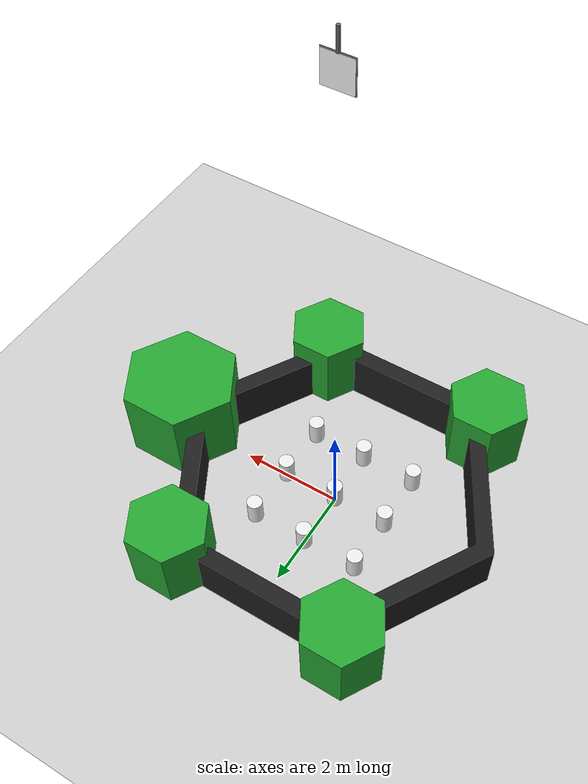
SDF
<sdf version='1.4'>
  <world name='default'>
    <!-- A global light source -->
    <include>
      <uri>model://sun</uri>
    </include>

    <!-- A ground plane -->
    <include>
      <uri>model://ground_plane</uri>
    </include>

  <include>
  <uri>model://marker_0</uri>
  <pose>0 0 10 3.14 0 3.14</pose>
</include>

    <physics type="ode">
      <real_time_update_rate>1000.0</real_time_update_rate>
      <max_step_size>0.001</max_step_size>
      <real_time_factor>1</real_time_factor>
      <ode>
        <solver>
          <type>quick</type>
          <iters>150</iters>
          <precon_iters>0</precon_iters>
          <sor>1.400000</sor>
          <use_dynamic_moi_rescaling>1</use_dynamic_moi_rescaling>
        </solver>
        <constraints>
          <cfm>0.00001</cfm>
          <erp>0.2</erp>
          <contact_max_correcting_vel>2000.000000</contact_max_correcting_vel>
          <contact_surface_layer>0.01000</contact_surface_layer>
        </constraints>
      </ode>
    </physics>

    <!-- Load world -->
    <include>
      <uri>model://turtlebot3_world</uri>
    </include>

    <scene>
      <ambient>0.4 0.4 0.4 1</ambient>
      <background>0.7 0.7 0.7 1</background>
      <shadows>true</shadows>
    </scene>

    <gui fullscreen='0'>
      <camera name='user_camera'>
        <pose>0.8 0.0 12.0 0 1.5708 0</pose>
        <view_controller>orbit</view_controller>
      </camera>
    </gui>
  </world>
</sdf>

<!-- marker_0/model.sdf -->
<sdf version="1.6">
  <model name="aruco_marker_0">
    <static>true</static>
    <link name="link">
      <!-- Support pole: top reaches the panel's lower edge (0.35 m), no overlap -->
      <visual name="pole">
        <pose>0 0 0.175 0 0 0</pose>
        <geometry><cylinder><radius>0.03</radius><length>0.35</length></cylinder></geometry>
        <material>
          <ambient>0.3 0.3 0.3 1</ambient>
          <diffuse>0.4 0.4 0.4 1</diffuse>
          <specular>0.1 0.1 0.1 1</specular>
        </material>
      </visual>
      <collision name="pole_col">
        <pose>0 0 0.175 0 0 0</pose>
        <geometry><cylinder><radius>0.03</radius><length>0.35</length></cylinder></geometry>
      </collision>
      <!-- Marker panel 0.50 m, center 0.6 m high; lower edge at 0.35 m -->
      <!-- Local +Y face carries the texture; world yaw aims it inward. -->
      <visual name="marker">
        <pose>0 0.011 0.6 1.5708 0 0</pose>
        <geometry><box><size>0.50 0.50 0.002</size></box></geometry>
        <material>
          <ambient>1.0 1.0 1.0 1</ambient>
          <diffuse>1.0 1.0 1.0 1</diffuse>
          <specular>0.0 0.0 0.0 1</specular>
          <pbr>
            <metal>
              <albedo_map>model://aruco/marker_0/materials/textures/marker_0.png</albedo_map>
              <metalness>0.0</metalness>
              <roughness>1.0</roughness>
            </metal>
          </pbr>
        </material>
      </visual>
      <collision name="marker_col">
        <pose>0 0 0.6 0 0 0</pose>
        <geometry><box><size>0.50 0.04 0.52</size></box></geometry>
      </collision>
      <!-- Opaque gray backing on the local -Y side: occludes the texture from
           behind so a camera facing the back cannot detect a mirrored (flipped) marker. -->
      <visual name="back_panel">
        <pose>0 -0.01 0.6 1.5708 0 0</pose>
        <geometry><box><size>0.52 0.52 0.005</size></box></geometry>
        <material>
          <ambient>0.5 0.5 0.5 1</ambient>
          <diffuse>0.5 0.5 0.5 1</diffuse>
          <specular>0.1 0.1 0.1 1</specular>
        </material>
      </visual>
    </link>
  </model>
</sdf>

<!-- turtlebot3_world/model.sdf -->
<sdf version='1.5'>
    <!-- Draw Circle -->
    <model name='ros_symbol'>
      <static>1</static>
      <link name='symbol'>
        <collision name='one_one'>
          <pose>-1.1 -1.1 0.25 0 0 0</pose>
          <geometry>
            <cylinder>
              <radius>0.15</radius>
              <length>0.5</length>
            </cylinder>
          </geometry>
          <max_contacts>10</max_contacts>
          <surface>
            <bounce/>
            <friction>
              <ode/>
            </friction>
            <contact>
              <ode/>
            </contact>
          </surface>
        </collision>

        <visual name='one_one'>
          <pose>-1.1 -1.1 0.25 0 0 0</pose>
          <geometry>
            <cylinder>
              <radius>0.15</radius>
              <length>0.5</length>
            </cylinder>
          </geometry>
          <material>
            <script>
              <uri>file://media/materials/scripts/gazebo.material</uri>
              <name>Gazebo/White</name>
            </script>
          </material>
        </visual>

        <collision name='one_two'>
          <pose>-1.1 0 0.25 0 0 0</pose>
          <geometry>
            <cylinder>
              <radius>0.15</radius>
              <length>0.5</length>
            </cylinder>
          </geometry>
          <max_contacts>10</max_contacts>
          <surface>
            <bounce/>
            <friction>
              <ode/>
            </friction>
            <contact>
              <ode/>
            </contact>
          </surface>
        </collision>

        <visual name='one_two'>
          <pose>-1.1 0 0.25 0 0 0</pose>
          <geometry>
            <cylinder>
              <radius>0.15</radius>
              <length>0.5</length>
            </cylinder>
          </geometry>
          <material>
            <script>
              <uri>file://media/materials/scripts/gazebo.material</uri>
              <name>Gazebo/White</name>
            </script>
          </material>
        </visual>

        <collision name='one_three'>
          <pose>-1.1 1.1 0.25 0 0 0</pose>
          <geometry>
            <cylinder>
              <radius>0.15</radius>
              <length>0.5</length>
            </cylinder>
          </geometry>
          <max_contacts>10</max_contacts>
          <surface>
            <bounce/>
            <friction>
              <ode/>
            </friction>
            <contact>
              <ode/>
            </contact>
          </surface>
        </collision>

        <visual name='one_three'>
          <pose>-1.1 1.1 0.25 0 0 0</pose>
          <geometry>
            <cylinder>
              <radius>0.15</radius>
              <length>0.5</length>
            </cylinder>
          </geometry>
          <material>
            <script>
              <uri>file://media/materials/scripts/gazebo.material</uri>
              <name>Gazebo/White</name>
            </script>
          </material>
        </visual>

        <collision name='two_one'>
          <pose>0 -1.1 0.25 0 0 0</pose>
          <geometry>
            <cylinder>
              <radius>0.15</radius>
              <length>0.5</length>
            </cylinder>
          </geometry>
          <max_contacts>10</max_contacts>
          <surface>
            <bounce/>
            <friction>
              <ode/>
            </friction>
            <contact>
              <ode/>
            </contact>
          </surface>
        </collision>

        <visual name='two_one'>
          <pose>0 -1.1 0.25 0 0 0</pose>
          <geometry>
            <cylinder>
              <radius>0.15</radius>
              <length>0.5</length>
            </cylinder>
          </geometry>
          <material>
            <script>
              <uri>file://media/materials/scripts/gazebo.material</uri>
              <name>Gazebo/White</name>
            </script>
          </material>
        </visual>

        <collision name='two_two'>
          <pose>0 0 0.25 0 0 0</pose>
          <geometry>
            <cylinder>
              <radius>0.15</radius>
              <length>0.5</length>
            </cylinder>
          </geometry>
          <max_contacts>10</max_contacts>
          <surface>
            <bounce/>
            <friction>
              <ode/>
            </friction>
            <contact>
              <ode/>
            </contact>
          </surface>
        </collision>

        <visual name='two_two'>
          <pose>0 0 0.25 0 0 0</pose>
          <geometry>
            <cylinder>
              <radius>0.15</radius>
              <length>0.5</length>
            </cylinder>
          </geometry>
          <material>
            <script>
              <uri>file://media/materials/scripts/gazebo.material</uri>
              <name>Gazebo/White</name>
            </script>
          </material>
        </visual>

        <collision name='two_three'>
          <pose>0 1.1 0.25 0 0 0</pose>
          <geometry>
            <cylinder>
              <radius>0.15</radius>
              <length>0.5</length>
            </cylinder>
          </geometry>
          <max_contacts>10</max_contacts>
          <surface>
            <bounce/>
            <friction>
              <ode/>
            </friction>
            <contact>
              <ode/>
            </contact>
          </surface>
        </collision>

        <visual name='two_three'>
          <pose>0 1.1 0.25 0 0 0</pose>
          <geometry>
            <cylinder>
              <radius>0.15</radius>
              <length>0.5</length>
            </cylinder>
          </geometry>
          <material>
            <script>
              <uri>file://media/materials/scripts/gazebo.material</uri>
              <name>Gazebo/White</name>
            </script>
          </material>
        </visual>

        <collision name='three_one'>
          <pose>1.1 -1.1 0.25 0 0 0</pose>
          <geometry>
            <cylinder>
              <radius>0.15</radius>
              <length>0.5</length>
            </cylinder>
          </geometry>
          <max_contacts>10</max_contacts>
          <surface>
            <bounce/>
            <friction>
              <ode/>
            </friction>
            <contact>
              <ode/>
            </contact>
          </surface>
        </collision>

        <visual name='three_one'>
          <pose>1.1 -1.1 0.25 0 0 0</pose>
          <geometry>
            <cylinder>
              <radius>0.15</radius>
              <length>0.5</length>
            </cylinder>
          </geometry>
          <material>
            <script>
              <uri>file://media/materials/scripts/gazebo.material</uri>
              <name>Gazebo/White</name>
            </script>
          </material>
        </visual>

        <collision name='three_two'>
          <pose>1.1 0 0.25 0 0 0</pose>
          <geometry>
            <cylinder>
              <radius>0.15</radius>
              <length>0.5</length>
            </cylinder>
          </geometry>
          <max_contacts>10</max_contacts>
          <surface>
            <bounce/>
            <friction>
              <ode/>
            </friction>
            <contact>
              <ode/>
            </contact>
          </surface>
        </collision>

        <visual name='three_two'>
          <pose>1.1 0 0.25 0 0 0</pose>
          <geometry>
            <cylinder>
              <radius>0.15</radius>
              <length>0.5</length>
            </cylinder>
          </geometry>
          <material>
            <script>
              <uri>file://media/materials/scripts/gazebo.material</uri>
              <name>Gazebo/White</name>
            </script>
          </material>
        </visual>

        <collision name='three_three'>
          <pose>1.1 1.1 0.25 0 0 0</pose>
          <geometry>
            <cylinder>
              <radius>0.15</radius>
              <length>0.5</length>
            </cylinder>
          </geometry>
          <max_contacts>10</max_contacts>
          <surface>
            <bounce/>
            <friction>
              <ode/>
            </friction>
            <contact>
              <ode/>
            </contact>
          </surface>
        </collision>

        <visual name='three_three'>
          <pose>1.1 1.1 0.25 0 0 0</pose>
          <geometry>
            <cylinder>
              <radius>0.15</radius>
              <length>0.5</length>
            </cylinder>
          </geometry>
          <material>
            <script>
              <uri>file://media/materials/scripts/gazebo.material</uri>
              <name>Gazebo/White</name>
            </script>
          </material>
        </visual>

        <!-- Draw Hexagon -->
        <collision name='head'>
          <pose>3.5 0 -0.5 0 0 0</pose>
          <geometry>
            <mesh>
              <uri>model://turtlebot3_world/meshes/hexagon.dae</uri>
              <scale>0.8 0.8 0.8</scale>
            </mesh>
          </geometry>
          <max_contacts>10</max_contacts>
          <surface>
            <bounce/>
            <friction>
              <ode/>
            </friction>
            <contact>
              <ode/>
            </contact>
          </surface>
        </collision>

        <visual name='head'>
          <pose>3.5 0 -0.5 0 0 0</pose>
          <geometry>
            <mesh>
              <uri>model://turtlebot3_world/meshes/hexagon.dae</uri>
              <scale>0.8 0.8 0.8</scale>
            </mesh>
          </geometry>
          <material>
            <script>
              <uri>file://media/materials/scripts/gazebo.material</uri>
              <name>Gazebo/Green</name>
            </script>
          </material>
        </visual>

        <collision name='left_hand'>
          <pose>1.8 2.7 0 0 0 0</pose>
          <geometry>
            <mesh>
              <uri>model://turtlebot3_world/meshes/hexagon.dae</uri>
              <scale>0.55 0.55 0.55</scale>
            </mesh>
          </geometry>
          <max_contacts>10</max_contacts>
          <surface>
            <bounce/>
            <friction>
              <ode/>
            </friction>
            <contact>
              <ode/>
            </contact>
          </surface>
        </collision>

        <visual name='left_hand'>
          <pose>1.8 2.7 0 0 0 0</pose>
          <geometry>
            <mesh>
              <uri>model://turtlebot3_world/meshes/hexagon.dae</uri>
              <scale>0.55 0.55 0.55</scale>
            </mesh>
          </geometry>
          <material>
            <script>
              <uri>file://media/materials/scripts/gazebo.material</uri>
              <name>Gazebo/Green</name>
            </script>
          </material>
        </visual>

        <collision name='right_hand'>
          <pose>1.8 -2.7 0 0 0 0</pose>
          <geometry>
            <mesh>
              <uri>model://turtlebot3_world/meshes/hexagon.dae</uri>
              <scale>0.55 0.55 0.55</scale>
            </mesh>
          </geometry>
          <max_contacts>10</max_contacts>
          <surface>
            <bounce/>
            <friction>
              <ode/>
            </friction>
            <contact>
              <ode/>
            </contact>
          </surface>
        </collision>

        <visual name='right_hand'>
          <pose>1.8 -2.7 0 0 0 0</pose>
          <geometry>
            <mesh>
              <uri>model://turtlebot3_world/meshes/hexagon.dae</uri>
              <scale>0.55 0.55 0.55</scale>
            </mesh>
          </geometry>
          <material>
            <script>
              <uri>file://media/materials/scripts/gazebo.material</uri>
              <name>Gazebo/Green</name>
            </script>
          </material>
        </visual>

        <collision name='left_foot'>
          <pose>-1.8 2.7 0 0 0 0</pose>
          <geometry>
            <mesh>
              <uri>model://turtlebot3_world/meshes/hexagon.dae</uri>
              <scale>0.55 0.55 0.55</scale>
            </mesh>
          </geometry>
          <max_contacts>10</max_contacts>
          <surface>
            <bounce/>
            <friction>
              <ode/>
            </friction>
            <contact>
              <ode/>
            </contact>
          </surface>
        </collision>

        <visual name='left_foot'>
          <pose>-1.8 2.7 0 0 0 0</pose>
          <geometry>
            <mesh>
              <uri>model://turtlebot3_world/meshes/hexagon.dae</uri>
              <scale>0.55 0.55 0.55</scale>
            </mesh>
          </geometry>
          <material>
            <script>
              <uri>file://media/materials/scripts/gazebo.material</uri>
              <name>Gazebo/Green</name>
            </script>
          </material>
        </visual>

        <collision name='right_foot'>
          <pose>-1.8 -2.7 0 0 0 0</pose>
          <geometry>
            <mesh>
              <uri>model://turtlebot3_world/meshes/hexagon.dae</uri>
              <scale>0.55 0.55 0.55</scale>
            </mesh>
          </geometry>
          <max_contacts>10</max_contacts>
          <surface>
            <bounce/>
            <friction>
              <ode/>
            </friction>
            <contact>
              <ode/>
            </contact>
          </surface>
        </collision>

        <visual name='right_foot'>
          <pose>-1.8 -2.7 0 0 0 0</pose>
          <geometry>
            <mesh>
              <uri>model://turtlebot3_world/meshes/hexagon.dae</uri>
              <scale>0.55 0.55 0.55</scale>
            </mesh>
          </geometry>
          <material>
            <script>
              <uri>file://media/materials/scripts/gazebo.material</uri>
              <name>Gazebo/Green</name>
            </script>
          </material>
        </visual>

        <!-- Draw Wall -->
        <collision name='body'>
        <pose>0 0 -0.3 0 0 -1.5708</pose>
        <geometry>
          <mesh>
            <uri>model://turtlebot3_world/meshes/wall.dae</uri>
            <scale>0.25 0.25 0.25</scale>
          </mesh>
        </geometry>
        <max_contacts>10</max_contacts>
        <surface>
          <bounce/>
          <friction>
            <ode/>
          </friction>
          <contact>
            <ode/>
          </contact>
        </surface>
      </collision>

      <include>
  <uri>model://marker_0</uri>
  <pose>0 0 0 3.14 0 3.14</pose>
    </include>

      <visual name='body'>
        <pose>0 0 -0.3 0 0 -1.5708</pose>
        <geometry>
          <mesh>
            <uri>model://turtlebot3_world/meshes/wall.dae</uri>
            <scale>0.25 0.25 0.25</scale>
          </mesh>
        </geometry>
        <material>
          <script>
            <uri>file://media/materials/scripts/gazebo.material</uri>
            <name>Gazebo/FlatBlack</name>
          </script>
        </material>
      </visual>
    </link>
  </model>
</sdf>
